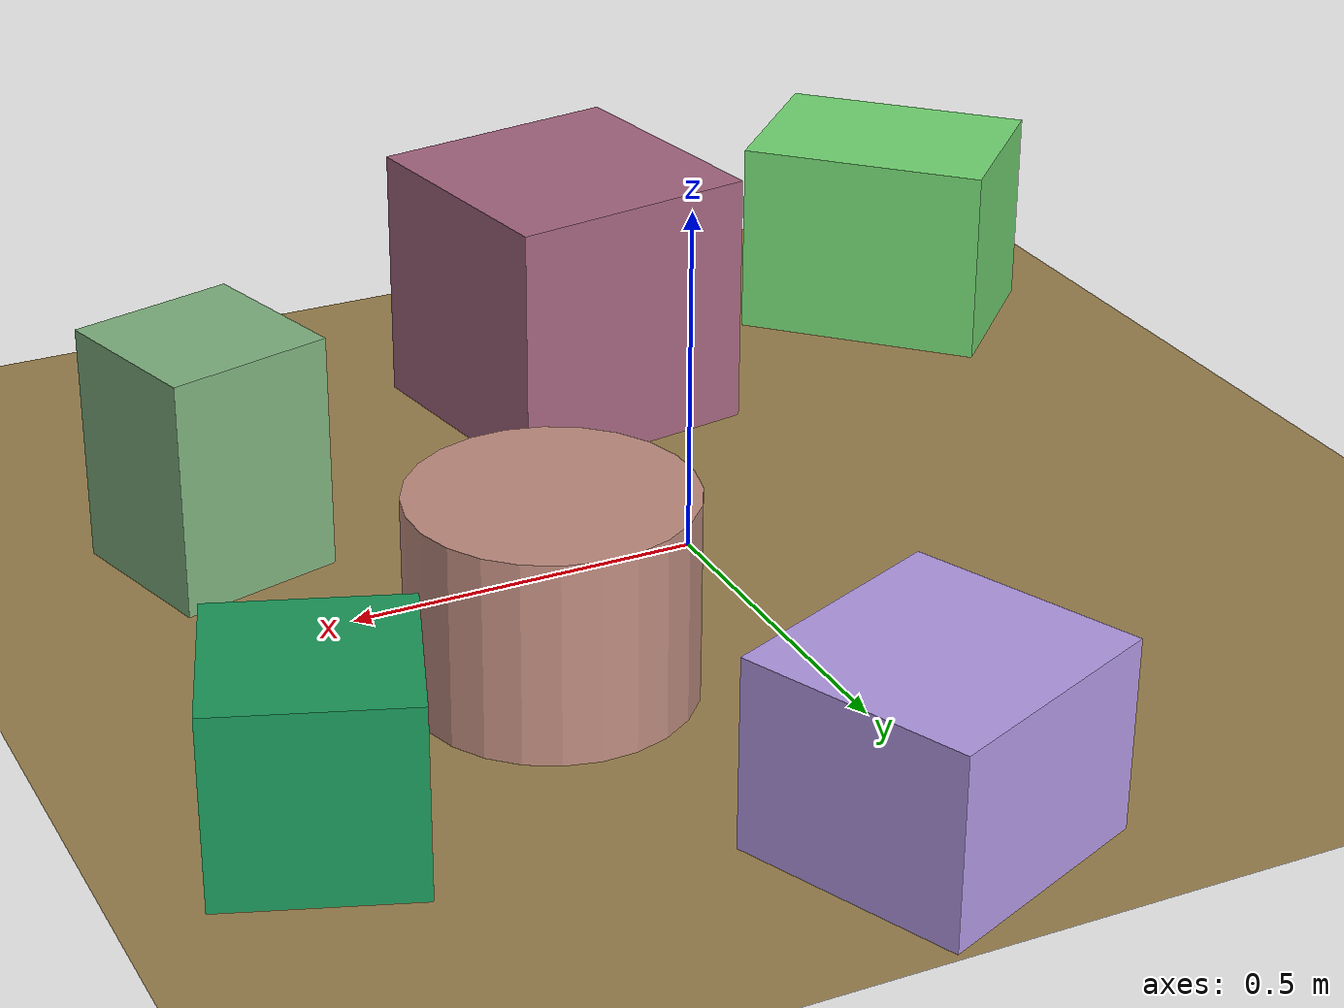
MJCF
<mujoco>
   <asset>
<texture type="skybox" builtin="gradient" rgb1="0.3 0.4 0.1" rgb2="0.7 0.9 0.9" width="256" height="256"/>
<texture name="flat_0" builtin="flat" rgb1="0.7 0.6 0.9" rgb2="0.7 0.6 0.9"  width="200" height="200"/>
<texture name="flat_1" builtin="flat" rgb1="0.5 0.7 0.5" rgb2="0.5 0.7 0.5"  width="200" height="200"/>
<texture name="checker_2" builtin="checker" rgb1="0.6 0.5 0.1" rgb2="0.7 0.3 0.9" width="200" height="200"/>
<texture name="checker_3" builtin="checker" rgb1="0.4 0.8 0.6" rgb2="0.5 0.9 0.3" width="200" height="200"/>
<texture name="checker_4" builtin="checker" rgb1="0.0 0.9 0.1" rgb2="0.2 0.3 0.6" width="200" height="200"/>
<texture name="checker_5" builtin="checker" rgb1="1.0 0.6 0.6" rgb2="0.5 0.5 0.4" width="200" height="200"/><material name="flat_0_mat" reflectance="0" texture="flat_0" texuniform="true"/>
<material name="flat_1_mat" reflectance="0" texture="flat_1" texuniform="true"/>
<material name="checker_2_mat" reflectance="0" texrepeat="5 5" texture="checker_2" texuniform="false" />
<material name="checker_3_mat" reflectance="0" texrepeat="6 6" texture="checker_3" texuniform="false" />
<material name="checker_4_mat" reflectance="0" texrepeat="4 4" texture="checker_4" texuniform="false" />
<material name="checker_5_mat" reflectance="0" texrepeat="8 8" texture="checker_5" texuniform="false" />
   </asset>

   <worldbody>
      <light diffuse=".9 .9 .9" pos="0 0 3" dir="0 0 -1"/>
     <geom type="plane" size="1 1 0.1" rgba="0.6 0.5 0.3 1"/>
<geom type="box" pos="0.07 0.78 0.13" size="0.17 0.16 0.13" material="flat_0_mat" euler="0 0 23" />
<geom type="box" pos="0.61 -0.25 0.17" size="0.12 0.12 0.17" material="flat_1_mat" euler="0 0 15" />
<geom type="box" pos="-0.04 -0.5 0.19" size="0.19 0.19 0.19" material="checker_2_mat" euler="0 0 9" />
<geom type="box" pos="-0.65 -0.6 0.15" size="0.14 0.19 0.15" material="checker_3_mat" euler="0 0 45" />
<geom type="box" pos="0.73 0.48 0.13" size="0.13 0.13 0.13" material="checker_4_mat" euler="0 0 70" />
<geom type="cylinder" pos="0.33 0.27 0.14" size="0.19 0.14 0.14" material="checker_5_mat" euler="0 0 24" /><camera euler="60 0 180" fovy="60" name="camera1" pos="-0.2 -1.5 1"></camera>   </worldbody>
</mujoco>
